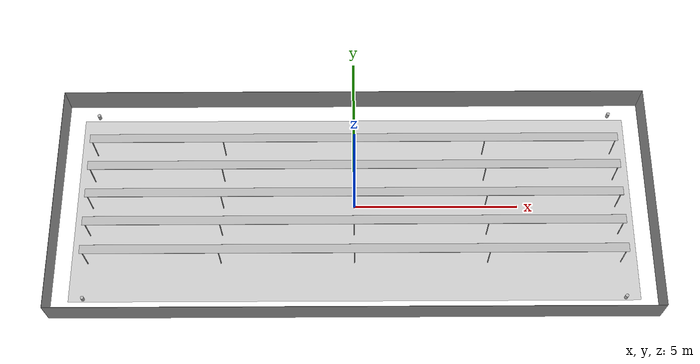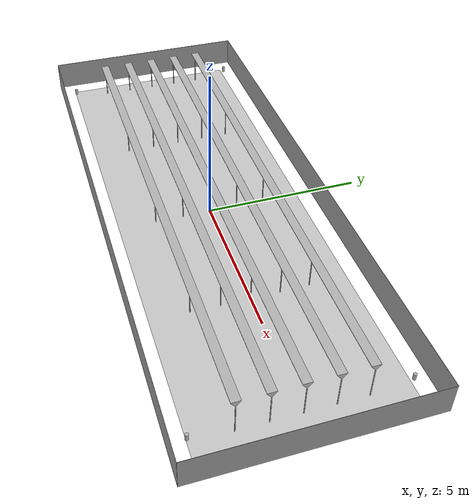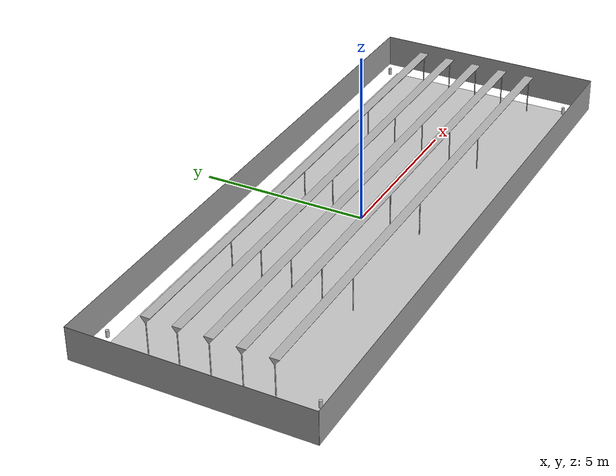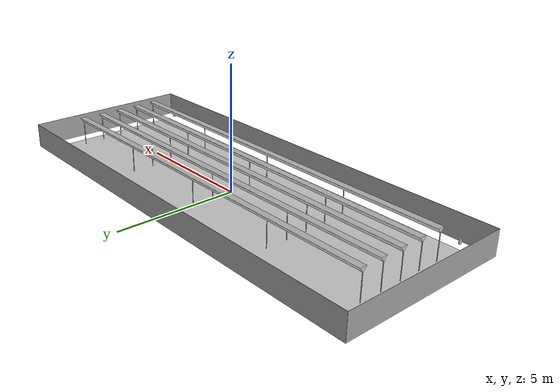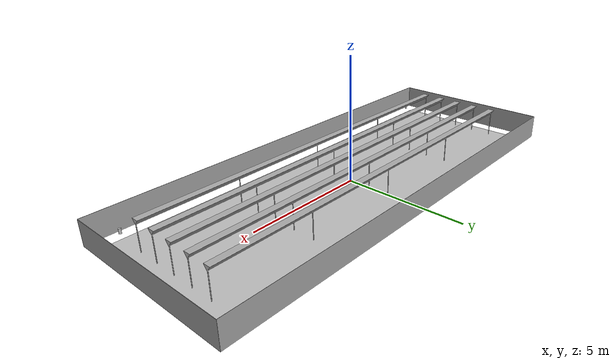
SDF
<sdf version="1.6">
 <world name="strawberry_factory">
  <light name="sun" type="directional">
   <pose>0 0 10 0 -0 0</pose>
   <diffuse>0.8 0.8 0.8 1</diffuse>
   <specular>0.2 0.2 0.2 1</specular>
   <attenuation>
    <range>1000</range>
    <constant>0.9</constant>
    <linear>0.01</linear>
    <quadratic>0.001</quadratic>
   </attenuation>
   <direction>-0.5 0.1 -0.9</direction>
  </light>
  <gravity>0 0 -9.8</gravity>
  <magnetic_field>6e-06 2.3e-05 -4.2e-05</magnetic_field>
  <atmosphere type="adiabatic"/>
  <physics name="default_physics" default="0" type="ode">
   <max_step_size>0.001</max_step_size>
   <real_time_factor>1</real_time_factor>
   <real_time_update_rate>1000</real_time_update_rate>
  </physics>
  <scene><ambient>0.4 0.4 0.4 1</ambient><background>0.7 0.7 0.7 1</background><shadows>1</shadows></scene>
  <spherical_coordinates>
   <surface_model>EARTH_WGS84</surface_model>
   <latitude_deg>0</latitude_deg>
   <longitude_deg>0</longitude_deg>
   <elevation>0</elevation>
   <heading_deg>0</heading_deg>
  </spherical_coordinates>
  <include><uri>models/dirt_plane</uri></include>
  <include><uri>models/Planter</uri></include>
  <include><uri>models/Planter_1</uri><pose>0 0.9 0 0 0 0</pose></include>
  <include><uri>models/Planter_2</uri><pose>0 1.8 0 0 0 0</pose></include>
  <include><uri>models/Planter_3</uri><pose>0 -0.9 0 0 0 0</pose></include>
  <include><uri>models/Planter_4</uri><pose>0 -1.8 0 0 0 0</pose></include>
  <model name="uwb_anchor0">
   <pose>8 3 0.3 0 0 0</pose>
   <static>1</static>
   <link name="link">
    <visual name="visual">
     <geometry><cylinder><radius>0.05</radius><length>0.2</length></cylinder></geometry>
    </visual>
   </link>
  </model>
  <model name="uwb_anchor1">
   <pose>-8 3 0.3 0 0 0</pose>
   <static>1</static>
   <link name="link">
    <visual name="visual">
     <geometry><cylinder><radius>0.05</radius><length>0.2</length></cylinder></geometry>
    </visual>
   </link>
  </model>
  <model name="uwb_anchor2">
   <pose>8 -3 0.3 0 0 0</pose>
   <static>1</static>
   <link name="link">
    <visual name="visual">
     <geometry><cylinder><radius>0.05</radius><length>0.2</length></cylinder></geometry>
    </visual>
   </link>
  </model>
  <model name="uwb_anchor3">
   <pose>-8 -3 0.3 0 0 0</pose>
   <static>1</static>
   <link name="link">
    <visual name="visual">
     <geometry><cylinder><radius>0.05</radius><length>0.2</length></cylinder></geometry>
    </visual>
   </link>
  </model>
  <model name="wall_box_1">
   <static>1</static>
   <pose>0 3.5 0.5 0 0 0</pose>
   <link name="link">
    <inertial>
     <mass>1</mass>
     <inertia>
      <ixx>0.166667</ixx>
      <ixy>0</ixy>
      <ixz>0</ixz>
      <iyy>0.166667</iyy>
      <iyz>0</iyz>
      <izz>0.166667</izz>
     </inertia>
     <pose>0 3.5 0.5 0 0 0</pose>
    </inertial>
    <collision name="collision"><geometry><box><size>18 0.01 1</size></box></geometry></collision>
    <visual name="visual">
     <geometry><box><size>18 0.01 1</size></box></geometry>
     <material>
      <script><name>Gazebo/Grey</name><uri>file://media/materials/scripts/gazebo.material</uri></script>
     </material>
    </visual>
   </link>
  </model>
  <model name="wall_box_2">
   <static>1</static>
   <pose>0 -3.5 0.5 0 0 0</pose>
   <link name="link">
    <inertial>
     <mass>1</mass>
     <inertia>
      <ixx>0.166667</ixx>
      <ixy>0</ixy>
      <ixz>0</ixz>
      <iyy>0.166667</iyy>
      <iyz>0</iyz>
      <izz>0.166667</izz>
     </inertia>
     <pose>0 -3.5 0.5 0 0 0</pose>
    </inertial>
    <collision name="collision"><geometry><box><size>18 0.01 1</size></box></geometry></collision>
    <visual name="visual">
     <geometry><box><size>18 0.01 1</size></box></geometry>
     <material>
      <script><name>Gazebo/Grey</name><uri>file://media/materials/scripts/gazebo.material</uri></script>
     </material>
    </visual>
   </link>
  </model>
  <model name="wall_box_3">
   <static>1</static>
   <pose>9 0 0.5 0 0 0</pose>
   <link name="link">
    <inertial>
     <mass>1</mass>
     <inertia>
      <ixx>0.166667</ixx>
      <ixy>0</ixy>
      <ixz>0</ixz>
      <iyy>0.166667</iyy>
      <iyz>0</iyz>
      <izz>0.166667</izz>
     </inertia>
     <pose>9 0 0.5 0 0 0</pose>
    </inertial>
    <collision name="collision"><geometry><box><size>0.01 7 1</size></box></geometry></collision>
    <visual name="visual">
     <geometry><box><size>0.01 7 1</size></box></geometry>
     <material>
      <script><name>Gazebo/Grey</name><uri>file://media/materials/scripts/gazebo.material</uri></script>
     </material>
    </visual>
   </link>
  </model>
  <model name="wall_box_4">
   <static>1</static>
   <pose>-9 0 0.5 0 0 0</pose>
   <link name="link">
    <inertial>
     <mass>1</mass>
     <inertia>
      <ixx>0.166667</ixx>
      <ixy>0</ixy>
      <ixz>0</ixz>
      <iyy>0.166667</iyy>
      <iyz>0</iyz>
      <izz>0.166667</izz>
     </inertia>
     <pose>-9 0 0.5 0 0 0</pose>
    </inertial>
    <collision name="collision"><geometry><box><size>0.01 7 1</size></box></geometry></collision>
    <visual name="visual">
     <geometry><box><size>0.01 7 1</size></box></geometry>
     <material>
      <script><name>Gazebo/Grey</name><uri>file://media/materials/scripts/gazebo.material</uri></script>
     </material>
    </visual>
   </link>
  </model>
 </world>
</sdf>

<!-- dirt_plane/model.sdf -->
<sdf version="1.6">
  <model name="dirt_plane">
    <static>true</static>
    <link name="link">
      <collision name="collision">
        <geometry>
          <plane>
            <normal>0 0 1</normal>
            <size>18 7</size>
          </plane>
        </geometry>
        <surface>
          <friction>
            <ode>
              <mu>100</mu>
              <mu2>50</mu2>
            </ode>
          </friction>
        </surface>
      </collision>
      <visual name="visual">
        <cast_shadows>false</cast_shadows>
        <geometry>
          <plane>
            <normal>0 0 1</normal>
            <size>17 6</size>
          </plane>
        </geometry>
        <material> <!-- Dirt brown -->
          <script>
            <uri>models/dirt_plane/materials/scripts</uri>
            <uri>models/dirt_plane/materials/textures</uri>
            <name>DirtPlane/Image</name>
          </script>
        </material>
      </visual>
    </link>
  </model>
</sdf>

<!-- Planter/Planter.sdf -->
<sdf version="1.6">
<model name="Planter">
  <static>true</static>
    <link name="link">
      <visual name="visual">
        <geometry>
          <mesh>
            <uri>models/Planter/meshes/Planter.dae</uri>
          </mesh>
        </geometry>
      </visual>
      <collision name="collision">
        <geometry>
          <mesh>
            <uri>models/Planter/meshes/Planter.dae</uri>
          </mesh>
        </geometry>
        <laser_retro>100</laser_retro>
      </collision>
    </link>
  </model>
</sdf>

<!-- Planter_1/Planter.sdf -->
<sdf version="1.6">
<model name="Planter_1">
  <static>true</static>
    <link name="link">
      <visual name="visual">
        <geometry>
          <mesh>
            <uri>models/Planter/meshes/Planter.dae</uri>
          </mesh>
        </geometry>
      </visual>
      <collision name="collision">
        <geometry>
          <mesh>
            <uri>models/Planter/meshes/Planter.dae</uri>
          </mesh>
        </geometry>
        <laser_retro>100</laser_retro>
      </collision>
    </link>
  </model>
</sdf>

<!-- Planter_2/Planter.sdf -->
<sdf version="1.6">
<model name="Planter_2">
  <static>true</static>
    <link name="link">
      <visual name="visual">
        <geometry>
          <mesh>
            <uri>models/Planter/meshes/Planter.dae</uri>
          </mesh>
        </geometry>
      </visual>
      <collision name="collision">
        <geometry>
          <mesh>
            <uri>models/Planter/meshes/Planter.dae</uri>
          </mesh>
        </geometry>
        <laser_retro>100</laser_retro>
      </collision>
    </link>
  </model>
</sdf>

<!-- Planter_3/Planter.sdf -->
<sdf version="1.6">
<model name="Planter_3">
  <static>true</static>
    <link name="link">
      <visual name="visual">
        <geometry>
          <mesh>
            <uri>models/Planter/meshes/Planter.dae</uri>
          </mesh>
        </geometry>
      </visual>
      <collision name="collision">
        <geometry>
          <mesh>
            <uri>models/Planter/meshes/Planter.dae</uri>
          </mesh>
        </geometry>
        <laser_retro>100</laser_retro>
      </collision>
    </link>
  </model>
</sdf>

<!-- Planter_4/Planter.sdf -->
<sdf version="1.6">
<model name="Planter_4">
  <static>true</static>
    <link name="link">
      <visual name="visual">
        <geometry>
          <mesh>
            <uri>models/Planter/meshes/Planter.dae</uri>
          </mesh>
        </geometry>
      </visual>
      <collision name="collision">
        <geometry>
          <mesh>
            <uri>models/Planter/meshes/Planter.dae</uri>
          </mesh>
        </geometry>
        <laser_retro>100</laser_retro>
      </collision>
    </link>
  </model>
</sdf>
